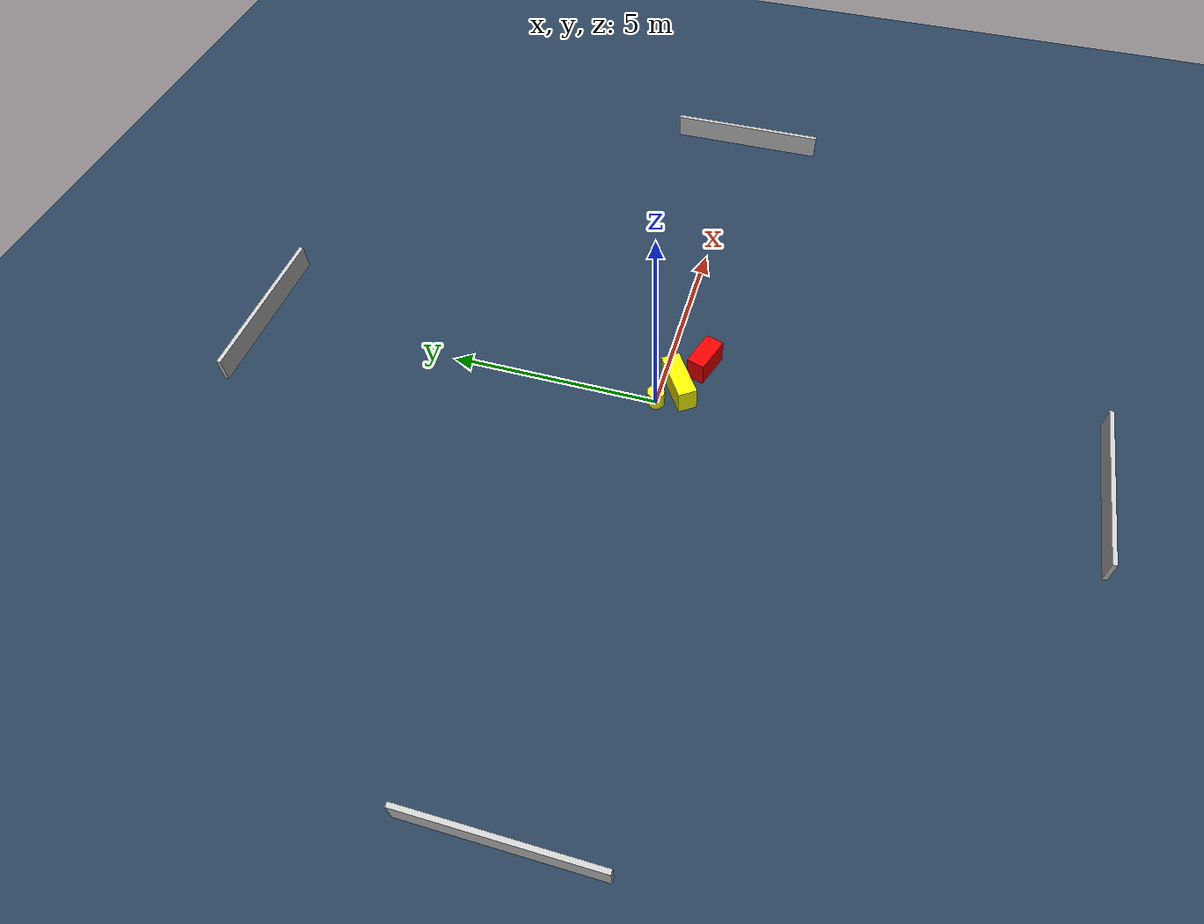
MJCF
<?xml version="1.0" ?>
<mujoco model="generated_environment">
  <option timestep="0.01" integrator="RK4" cone="elliptic"/>
  <default>
    <geom density="1"/>
  </default>
  <asset>
    <texture builtin="gradient" height="3072" name="skybox" rgb1="0.3 0.5 0.7" rgb2="0 0 0" type="skybox" width="512"/>
    <texture builtin="checker" height="300" name="groundplane" rgb1="0.2 0.3 0.4" rgb2="0.1 0.2 0.3" type="2d" width="300"/>
    <material name="groundplane" reflectance="0.2" texrepeat="5 5" texture="groundplane"/>
  </asset>
  <worldbody>
    <light dir="0 0 -1" directional="true" pos="0 0 1.5"/>
    <geom condim="3" friction="0.5 0.005 0.001" material="groundplane" name="floor" pos="0 0 0" size="0 0 0.05" type="plane"/>
    <body name="walls">
      <geom name="wall_1" condim="4" pos="-10.0 0.0 0.3" rgba="0.800000011920929 0.800000011920929 0.800000011920929 1.0" size="0.05 2.0 0.3" type="box"/>
      <geom name="wall_2" condim="4" pos="10.0 0.0 0.3" rgba="0.800000011920929 0.800000011920929 0.800000011920929 1.0" size="0.05 2.0 0.3" type="box"/>
      <geom name="wall_3" condim="4" pos="0.0 -10.0 0.3" rgba="0.800000011920929 0.800000011920929 0.800000011920929 1.0" size="2.0 0.05 0.3" type="box"/>
      <geom name="wall_4" condim="4" pos="0.0 10.0 0.3" rgba="0.800000011920929 0.800000011920929 0.800000011920929 1.0" size="2.0 0.05 0.3" type="box"/>
    </body>
    <body name="robot">
      <joint name="joint_x" type="slide" pos="0 0 0" axis="1 0 0"/>
      <joint name="joint_y" type="slide" pos="0 0 0" axis="0 1 0"/>
      <geom name="robot" type="cylinder" pos="0.0 0.0 0.2" size="0.2 0.2 0.0" mass="5.0" friction="1.0 0.005 0.0001" condim="4" rgba="1.0 1.0 0.0 1.0"/>
    </body>
    <body name="obstacle_1_movable">
      <geom name="obstacle_1_movable" condim="4" pos="0.4847917075861955 -0.41329789181356447 0.3" euler="0 0 214.36629303523688" friction="0.0 0.005 0.001" rgba="1.0 1.0 0.0 1.0" size="0.5985517948787147 0.2216118086442602 0.3" type="box" mass="0.1"/>
      <joint type="free"/>
    </body>
    <body name="obstacle_2_static">
      <geom name="obstacle_2_static" condim="4" pos="1.319584928236894 -0.835699846448483 0.3" euler="0 0 252.00732054197164" friction="0.0 0.005 0.001" rgba="1.0 0.0 0.0 1.0" size="0.2225014150852224 0.4480876525751717 0.3" type="box"/>
    </body>
  </worldbody>
  <actuator>
    <motor name="actuator_x" joint="joint_x" gear="1" ctrlrange="-1 1"/>
    <motor name="actuator_y" joint="joint_y" gear="1" ctrlrange="-1 1"/>
  </actuator>
</mujoco>
